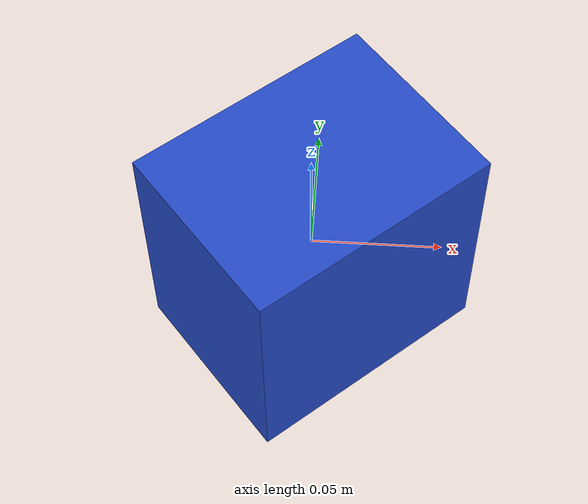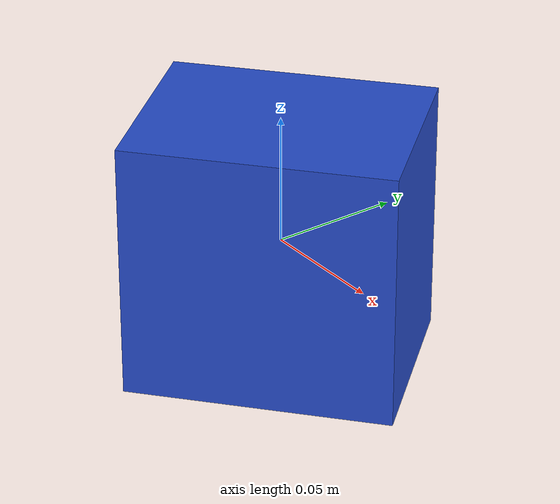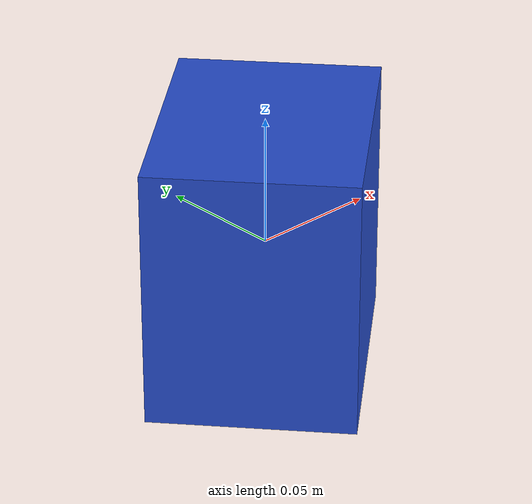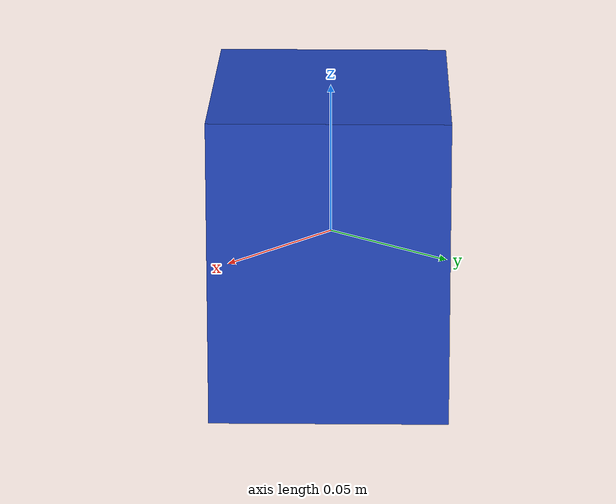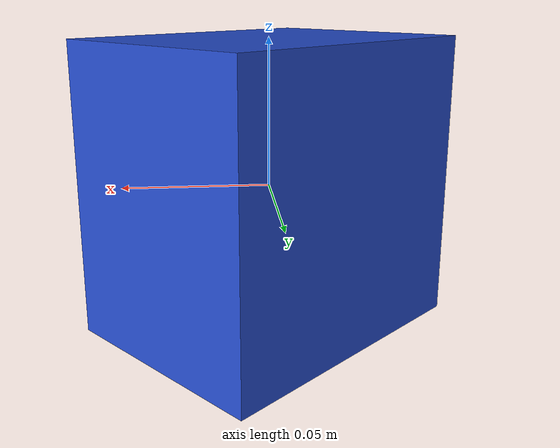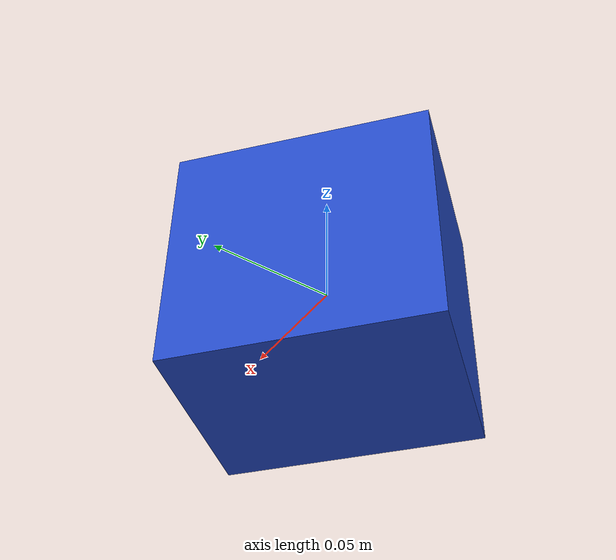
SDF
<sdf version="1.6"><model name="model_8"><static>true</static><link name="link"><pose>0 0 0 0 0 0.7092092387082595</pose><collision name="collision"><geometry><box><size>0.10184888767202957 0.07761215394660353 0.1</size></box></geometry></collision><visual name="visual"><geometry><box><size>0.10184888767202957 0.07761215394660353 0.1</size></box></geometry><material><script><name>Gazebo/Blue</name><uri>file://media/materials/scripts/gazebo.material</uri></script></material></visual></link></model></sdf>
